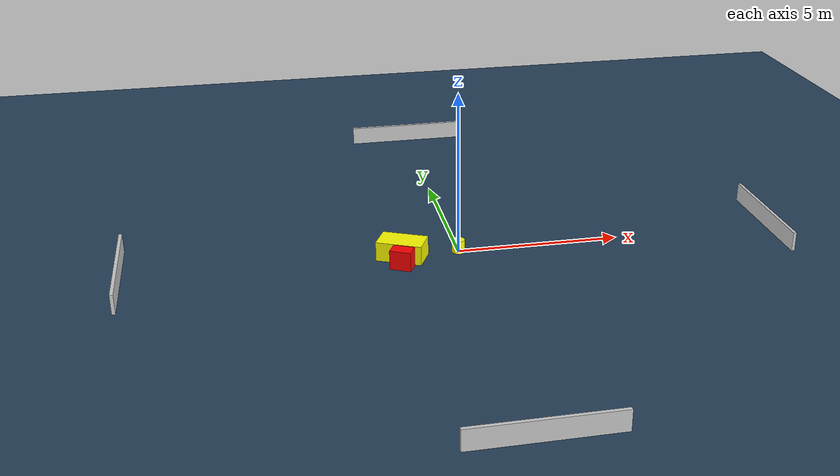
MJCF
<?xml version="1.0" ?>
<mujoco model="generated_environment">
  <option timestep="0.01" integrator="RK4" cone="elliptic"/>
  <default>
    <geom density="1"/>
  </default>
  <asset>
    <texture builtin="gradient" height="3072" name="skybox" rgb1="0.3 0.5 0.7" rgb2="0 0 0" type="skybox" width="512"/>
    <texture builtin="checker" height="300" name="groundplane" rgb1="0.2 0.3 0.4" rgb2="0.1 0.2 0.3" type="2d" width="300"/>
    <material name="groundplane" reflectance="0.2" texrepeat="5 5" texture="groundplane"/>
  </asset>
  <worldbody>
    <light dir="0 0 -1" directional="true" pos="0 0 1.5"/>
    <geom condim="3" friction="0.5 0.005 0.001" material="groundplane" name="floor" pos="0 0 0" size="0 0 0.05" type="plane"/>
    <body name="walls">
      <geom name="wall_1" condim="4" pos="-10.0 0.0 0.3" rgba="0.800000011920929 0.800000011920929 0.800000011920929 1.0" size="0.05 2.0 0.3" type="box"/>
      <geom name="wall_2" condim="4" pos="10.0 0.0 0.3" rgba="0.800000011920929 0.800000011920929 0.800000011920929 1.0" size="0.05 2.0 0.3" type="box"/>
      <geom name="wall_3" condim="4" pos="0.0 -10.0 0.3" rgba="0.800000011920929 0.800000011920929 0.800000011920929 1.0" size="2.0 0.05 0.3" type="box"/>
      <geom name="wall_4" condim="4" pos="0.0 10.0 0.3" rgba="0.800000011920929 0.800000011920929 0.800000011920929 1.0" size="2.0 0.05 0.3" type="box"/>
    </body>
    <body name="robot">
      <joint name="joint_x" type="slide" pos="0 0 0" axis="1 0 0"/>
      <joint name="joint_y" type="slide" pos="0 0 0" axis="0 1 0"/>
      <geom name="robot" type="cylinder" pos="0.0 0.0 0.2" size="0.2 0.2 0.0" mass="5.0" friction="1.0 0.005 0.0001" condim="4" rgba="1.0 1.0 0.0 1.0"/>
    </body>
    <body name="obstacle_1_movable">
      <geom name="obstacle_1_movable" condim="4" pos="-1.7278328024206402 -0.06635268733455892 0.3" euler="0 0 334.8585138632751" friction="0.0 0.005 0.001" rgba="1.0 1.0 0.0 1.0" size="0.7030026989827971 0.4044715661161724 0.3" type="box" mass="0.1"/>
      <joint type="free"/>
    </body>
    <body name="obstacle_2_static">
      <geom name="obstacle_2_static" condim="4" pos="-1.8326370010128206 -0.7398833138517207 0.3" euler="0 0 333.7857595890177" friction="0.0 0.005 0.001" rgba="1.0 0.0 0.0 1.0" size="0.32587500961161664 0.21435926380054748 0.3" type="box"/>
    </body>
  </worldbody>
  <actuator>
    <motor name="actuator_x" joint="joint_x" gear="1" ctrlrange="-1 1"/>
    <motor name="actuator_y" joint="joint_y" gear="1" ctrlrange="-1 1"/>
  </actuator>
</mujoco>
